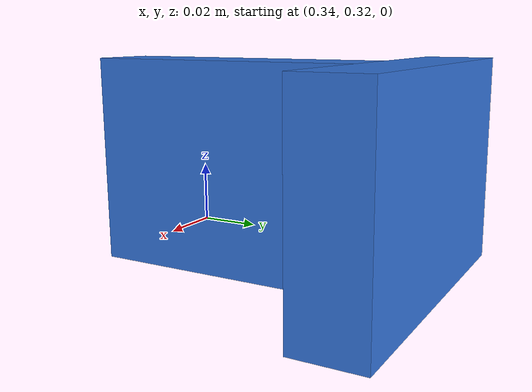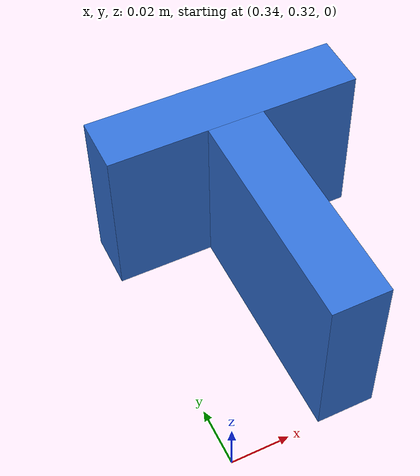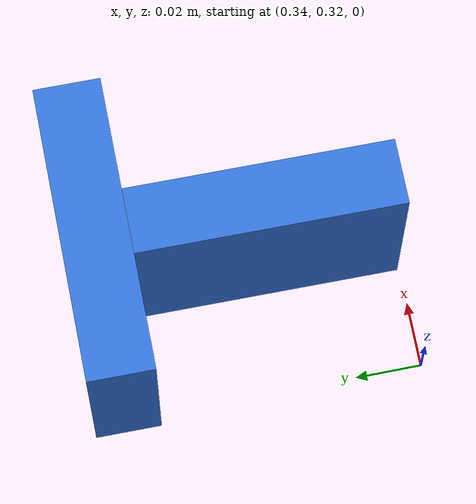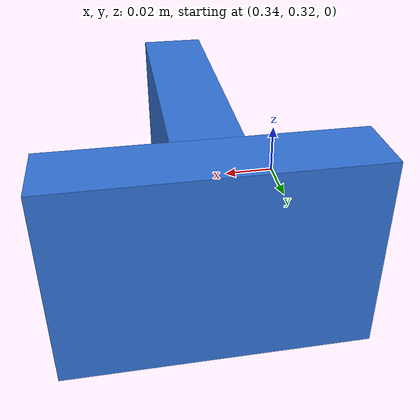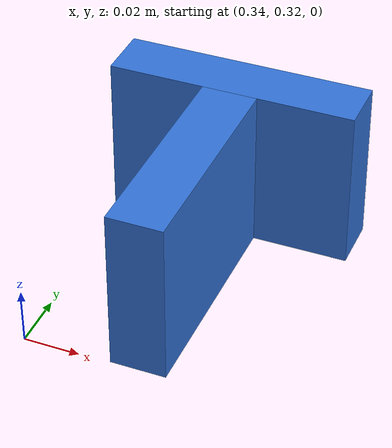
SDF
<?xml version="1.0"?>
<sdf version="1.7">
  <model name="block">
    <pose>0.381 0.400 0.0298 0 0 0</pose>
    <link name="block">
      <inertial>
        <pose>0 -0.0149 0 0 0 0</pose>
        <mass>0.1</mass>
        <inertia>
          <ixx>0.000119007</ixx><iyy>0.000064239</iyy>
          <izz>0.000124043</izz><ixy>0</ixy><ixz>0</ixz><iyz>0</iyz>
        </inertia>
      </inertial>
      <visual name="block_crossbar_visual">
        <pose>0 0.0099 0 0 0 0</pose>
        <geometry><box><size>0.089 0.0198 0.0596</size></box></geometry>
        <material><diffuse>0.2 0.45 0.85 1</diffuse></material>
      </visual>
      <collision name="block_crossbar">
        <pose>0 0.0099 0 0 0 0</pose>
        <geometry><box><size>0.089 0.0198 0.0596</size></box></geometry>
        <surface><friction><ode><mu>0.3</mu><mu2>0.3</mu2></ode></friction></surface>
      </collision>
      <visual name="block_stem_visual">
        <pose>0 -0.0397 0 0 0 0</pose>
        <geometry><box><size>0.0198 0.0794 0.0596</size></box></geometry>
        <material><diffuse>0.2 0.45 0.85 1</diffuse></material>
      </visual>
      <collision name="block_stem">
        <pose>0 -0.0397 0 0 0 0</pose>
        <geometry><box><size>0.0198 0.0794 0.0596</size></box></geometry>
        <surface><friction><ode><mu>0.3</mu><mu2>0.3</mu2></ode></friction></surface>
      </collision>
    </link>
  </model>
</sdf>
